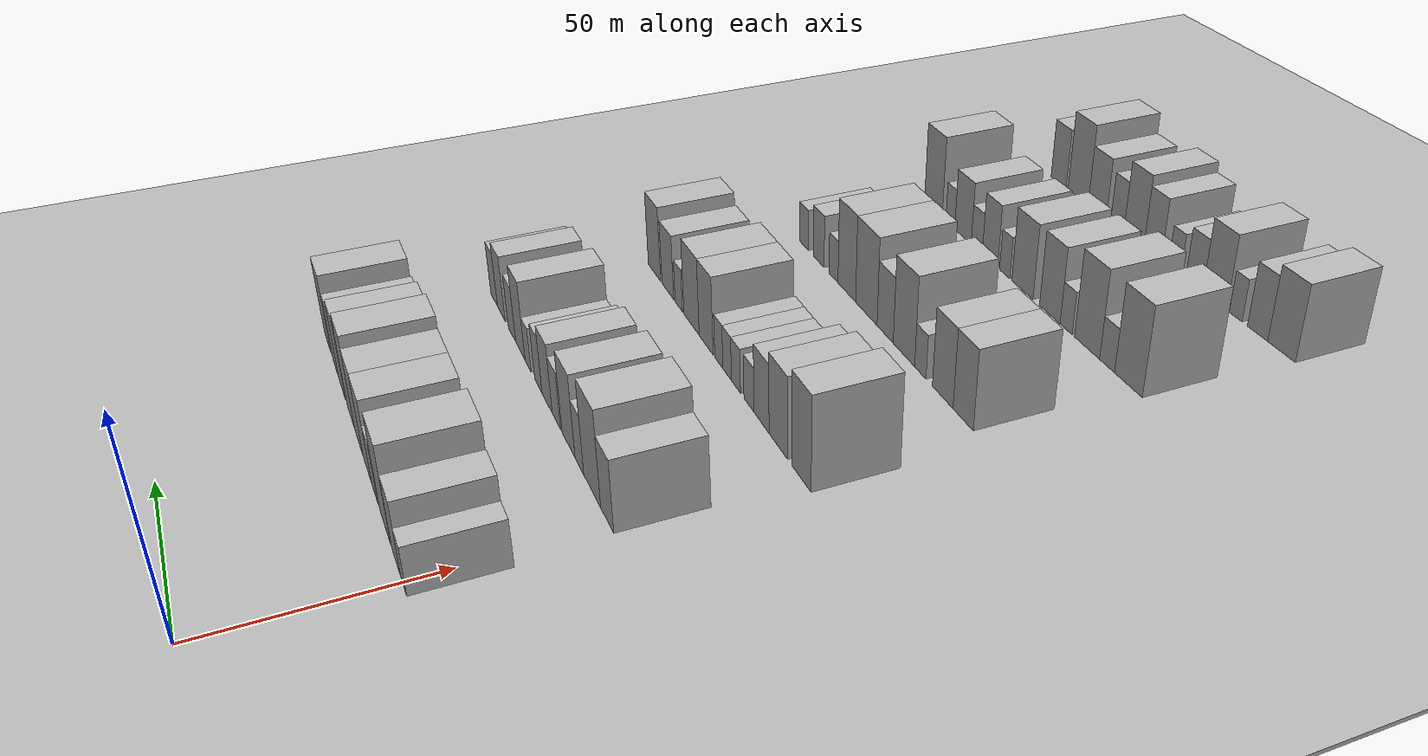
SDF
<sdf version="1.6">
 <world name="default">
  <include><name>ground_plane_1</name><uri>model://HANNAS_ground_plane</uri></include>
  <include>
   <name>ground_plane_2</name>
   <uri>model://HANNAS_ground_plane</uri>
   <pose>100 0 0  0 0 0</pose>
  </include>
  <model name="building_66">
   <static>1</static>
   <pose>50.0000 -1.7930 0 0.000000 0.000000 0.000000</pose>
   <link name="link">
    <pose>0 0 6.00 0 0 0</pose>
    <collision name="collision"><geometry><box><size>20.0000 5.8030 12.0000</size></box></geometry></collision>
    <visual name="visual">
     <cast_shadows>0</cast_shadows>
     <geometry><box><size>20.0000 5.8030 12.0000</size></box></geometry>
     <material>
      <script>
       <uri>model://HANNAS_wall/materials/scripts</uri>
       <uri>model://HANNAS_wall/materials/textures</uri>
       <name>vrc/HANNAS_wall</name>
      </script>
     </material>
    </visual>
   </link>
  </model>
  <model name="building_67">
   <static>1</static>
   <pose>50.0000 5.4243 0 0.000000 0.000000 0.000000</pose>
   <link name="link">
    <pose>0 0 9.00 0 0 0</pose>
    <collision name="collision"><geometry><box><size>20.0000 8.6317 18.0000</size></box></geometry></collision>
    <visual name="visual">
     <cast_shadows>0</cast_shadows>
     <geometry><box><size>20.0000 8.6317 18.0000</size></box></geometry>
     <material>
      <script>
       <uri>model://HANNAS_wall/materials/scripts</uri>
       <uri>model://HANNAS_wall/materials/textures</uri>
       <name>vrc/HANNAS_wall</name>
      </script>
     </material>
    </visual>
   </link>
  </model>
  <model name="building_68">
   <static>1</static>
   <pose>50.0000 16.5635 0 0.000000 0.000000 0.000000</pose>
   <link name="link">
    <pose>0 0 12.00 0 0 0</pose>
    <collision name="collision"><geometry><box><size>20.0000 11.6468 24.0000</size></box></geometry></collision>
    <visual name="visual">
     <cast_shadows>0</cast_shadows>
     <geometry><box><size>20.0000 11.6468 24.0000</size></box></geometry>
     <material>
      <script>
       <uri>model://HANNAS_wall/materials/scripts</uri>
       <uri>model://HANNAS_wall/materials/textures</uri>
       <name>vrc/HANNAS_wall</name>
      </script>
     </material>
    </visual>
   </link>
  </model>
  <model name="building_69">
   <static>1</static>
   <pose>50.0000 27.7491 0 0.000000 0.000000 0.000000</pose>
   <link name="link">
    <pose>0 0 7.50 0 0 0</pose>
    <collision name="collision"><geometry><box><size>20.0000 6.7244 15.0000</size></box></geometry></collision>
    <visual name="visual">
     <cast_shadows>0</cast_shadows>
     <geometry><box><size>20.0000 6.7244 15.0000</size></box></geometry>
     <material>
      <script>
       <uri>model://HANNAS_wall/materials/scripts</uri>
       <uri>model://HANNAS_wall/materials/textures</uri>
       <name>vrc/HANNAS_wall</name>
      </script>
     </material>
    </visual>
   </link>
  </model>
  <model name="building_70">
   <static>1</static>
   <pose>50.0000 36.2370 0 0.000000 0.000000 0.000000</pose>
   <link name="link">
    <pose>0 0 10.50 0 0 0</pose>
    <collision name="collision"><geometry><box><size>20.0000 10.2514 21.0000</size></box></geometry></collision>
    <visual name="visual">
     <cast_shadows>0</cast_shadows>
     <geometry><box><size>20.0000 10.2514 21.0000</size></box></geometry>
     <material>
      <script>
       <uri>model://HANNAS_wall/materials/scripts</uri>
       <uri>model://HANNAS_wall/materials/textures</uri>
       <name>vrc/HANNAS_wall</name>
      </script>
     </material>
    </visual>
   </link>
  </model>
  <model name="building_71">
   <static>1</static>
   <pose>50.0000 46.3768 0 0.000000 0.000000 0.000000</pose>
   <link name="link">
    <pose>0 0 10.50 0 0 0</pose>
    <collision name="collision"><geometry><box><size>20.0000 10.0281 21.0000</size></box></geometry></collision>
    <visual name="visual">
     <cast_shadows>0</cast_shadows>
     <geometry><box><size>20.0000 10.0281 21.0000</size></box></geometry>
     <material>
      <script>
       <uri>model://HANNAS_wall/materials/scripts</uri>
       <uri>model://HANNAS_wall/materials/textures</uri>
       <name>vrc/HANNAS_wall</name>
      </script>
     </material>
    </visual>
   </link>
  </model>
  <model name="building_72">
   <static>1</static>
   <pose>50.0000 56.3590 0 0.000000 0.000000 0.000000</pose>
   <link name="link">
    <pose>0 0 12.00 0 0 0</pose>
    <collision name="collision"><geometry><box><size>20.0000 9.9364 24.0000</size></box></geometry></collision>
    <visual name="visual">
     <cast_shadows>0</cast_shadows>
     <geometry><box><size>20.0000 9.9364 24.0000</size></box></geometry>
     <material>
      <script>
       <uri>model://HANNAS_wall/materials/scripts</uri>
       <uri>model://HANNAS_wall/materials/textures</uri>
       <name>vrc/HANNAS_wall</name>
      </script>
     </material>
    </visual>
   </link>
  </model>
  <model name="building_73">
   <static>1</static>
   <pose>50.0000 68.0204 0 0.000000 0.000000 0.000000</pose>
   <link name="link">
    <pose>0 0 10.50 0 0 0</pose>
    <collision name="collision"><geometry><box><size>20.0000 9.3864 21.0000</size></box></geometry></collision>
    <visual name="visual">
     <cast_shadows>0</cast_shadows>
     <geometry><box><size>20.0000 9.3864 21.0000</size></box></geometry>
     <material>
      <script>
       <uri>model://HANNAS_wall/materials/scripts</uri>
       <uri>model://HANNAS_wall/materials/textures</uri>
       <name>vrc/HANNAS_wall</name>
      </script>
     </material>
    </visual>
   </link>
  </model>
  <model name="building_74">
   <static>1</static>
   <pose>50.0000 76.7743 0 0.000000 0.000000 0.000000</pose>
   <link name="link">
    <pose>0 0 9.00 0 0 0</pose>
    <collision name="collision"><geometry><box><size>20.0000 8.1215 18.0000</size></box></geometry></collision>
    <visual name="visual">
     <cast_shadows>0</cast_shadows>
     <geometry><box><size>20.0000 8.1215 18.0000</size></box></geometry>
     <material>
      <script>
       <uri>model://HANNAS_wall/materials/scripts</uri>
       <uri>model://HANNAS_wall/materials/textures</uri>
       <name>vrc/HANNAS_wall</name>
      </script>
     </material>
    </visual>
   </link>
  </model>
  <model name="building_75">
   <static>1</static>
   <pose>50.0000 88.6236 0 0.000000 0.000000 0.000000</pose>
   <link name="link">
    <pose>0 0 10.50 0 0 0</pose>
    <collision name="collision"><geometry><box><size>20.0000 9.5769 21.0000</size></box></geometry></collision>
    <visual name="visual">
     <cast_shadows>0</cast_shadows>
     <geometry><box><size>20.0000 9.5769 21.0000</size></box></geometry>
     <material>
      <script>
       <uri>model://HANNAS_wall/materials/scripts</uri>
       <uri>model://HANNAS_wall/materials/textures</uri>
       <name>vrc/HANNAS_wall</name>
      </script>
     </material>
    </visual>
   </link>
  </model>
  <model name="building_212">
   <static>1</static>
   <pose>90.0000 1.4858 0 0.000000 0.000000 0.000000</pose>
   <link name="link">
    <pose>0 0 9.00 0 0 0</pose>
    <collision name="collision"><geometry><box><size>20.0000 8.4259 18.0000</size></box></geometry></collision>
    <visual name="visual">
     <cast_shadows>0</cast_shadows>
     <geometry><box><size>20.0000 8.4259 18.0000</size></box></geometry>
     <material>
      <script>
       <uri>model://HANNAS_wall/materials/scripts</uri>
       <uri>model://HANNAS_wall/materials/textures</uri>
       <name>vrc/HANNAS_wall</name>
      </script>
     </material>
    </visual>
   </link>
  </model>
  <model name="building_213">
   <static>1</static>
   <pose>90.0000 11.5079 0 0.000000 0.000000 0.000000</pose>
   <link name="link">
    <pose>0 0 12.00 0 0 0</pose>
    <collision name="collision"><geometry><box><size>20.0000 11.6184 24.0000</size></box></geometry></collision>
    <visual name="visual">
     <cast_shadows>0</cast_shadows>
     <geometry><box><size>20.0000 11.6184 24.0000</size></box></geometry>
     <material>
      <script>
       <uri>model://HANNAS_wall/materials/scripts</uri>
       <uri>model://HANNAS_wall/materials/textures</uri>
       <name>vrc/HANNAS_wall</name>
      </script>
     </material>
    </visual>
   </link>
  </model>
  <model name="building_214">
   <static>1</static>
   <pose>90.0000 20.4236 0 0.000000 0.000000 0.000000</pose>
   <link name="link">
    <pose>0 0 7.50 0 0 0</pose>
    <collision name="collision"><geometry><box><size>20.0000 6.2130 15.0000</size></box></geometry></collision>
    <visual name="visual">
     <cast_shadows>0</cast_shadows>
     <geometry><box><size>20.0000 6.2130 15.0000</size></box></geometry>
     <material>
      <script>
       <uri>model://HANNAS_wall/materials/scripts</uri>
       <uri>model://HANNAS_wall/materials/textures</uri>
       <name>vrc/HANNAS_wall</name>
      </script>
     </material>
    </visual>
   </link>
  </model>
  <model name="building_215">
   <static>1</static>
   <pose>90.0000 28.3639 0 0.000000 0.000000 0.000000</pose>
   <link name="link">
    <pose>0 0 10.50 0 0 0</pose>
    <collision name="collision"><geometry><box><size>20.0000 9.6675 21.0000</size></box></geometry></collision>
    <visual name="visual">
     <cast_shadows>0</cast_shadows>
     <geometry><box><size>20.0000 9.6675 21.0000</size></box></geometry>
     <material>
      <script>
       <uri>model://HANNAS_wall/materials/scripts</uri>
       <uri>model://HANNAS_wall/materials/textures</uri>
       <name>vrc/HANNAS_wall</name>
      </script>
     </material>
    </visual>
   </link>
  </model>
  <model name="building_216">
   <static>1</static>
   <pose>90.0000 37.5017 0 0.000000 0.000000 0.000000</pose>
   <link name="link">
    <pose>0 0 7.50 0 0 0</pose>
    <collision name="collision"><geometry><box><size>20.0000 6.6081 15.0000</size></box></geometry></collision>
    <visual name="visual">
     <cast_shadows>0</cast_shadows>
     <geometry><box><size>20.0000 6.6081 15.0000</size></box></geometry>
     <material>
      <script>
       <uri>model://HANNAS_wall/materials/scripts</uri>
       <uri>model://HANNAS_wall/materials/textures</uri>
       <name>vrc/HANNAS_wall</name>
      </script>
     </material>
    </visual>
   </link>
  </model>
  <model name="building_217">
   <static>1</static>
   <pose>90.0000 44.9031 0 0.000000 0.000000 0.000000</pose>
   <link name="link">
    <pose>0 0 9.00 0 0 0</pose>
    <collision name="collision"><geometry><box><size>20.0000 8.1945 18.0000</size></box></geometry></collision>
    <visual name="visual">
     <cast_shadows>0</cast_shadows>
     <geometry><box><size>20.0000 8.1945 18.0000</size></box></geometry>
     <material>
      <script>
       <uri>model://HANNAS_wall/materials/scripts</uri>
       <uri>model://HANNAS_wall/materials/textures</uri>
       <name>vrc/HANNAS_wall</name>
      </script>
     </material>
    </visual>
   </link>
  </model>
  <model name="building_218">
   <static>1</static>
   <pose>90.0000 52.0956 0 0.000000 0.000000 0.000000</pose>
   <link name="link">
    <pose>0 0 7.50 0 0 0</pose>
    <collision name="collision"><geometry><box><size>20.0000 6.1906 15.0000</size></box></geometry></collision>
    <visual name="visual">
     <cast_shadows>0</cast_shadows>
     <geometry><box><size>20.0000 6.1906 15.0000</size></box></geometry>
     <material>
      <script>
       <uri>model://HANNAS_wall/materials/scripts</uri>
       <uri>model://HANNAS_wall/materials/textures</uri>
       <name>vrc/HANNAS_wall</name>
      </script>
     </material>
    </visual>
   </link>
  </model>
  <model name="building_219">
   <static>1</static>
   <pose>90.0000 60.7990 0 0.000000 0.000000 0.000000</pose>
   <link name="link">
    <pose>0 0 6.00 0 0 0</pose>
    <collision name="collision"><geometry><box><size>20.0000 5.2161 12.0000</size></box></geometry></collision>
    <visual name="visual">
     <cast_shadows>0</cast_shadows>
     <geometry><box><size>20.0000 5.2161 12.0000</size></box></geometry>
     <material>
      <script>
       <uri>model://HANNAS_wall/materials/scripts</uri>
       <uri>model://HANNAS_wall/materials/textures</uri>
       <name>vrc/HANNAS_wall</name>
      </script>
     </material>
    </visual>
   </link>
  </model>
  <model name="building_220">
   <static>1</static>
   <pose>90.0000 67.6302 0 0.000000 0.000000 0.000000</pose>
   <link name="link">
    <pose>0 0 10.50 0 0 0</pose>
    <collision name="collision"><geometry><box><size>20.0000 8.4463 21.0000</size></box></geometry></collision>
    <visual name="visual">
     <cast_shadows>0</cast_shadows>
     <geometry><box><size>20.0000 8.4463 21.0000</size></box></geometry>
     <material>
      <script>
       <uri>model://HANNAS_wall/materials/scripts</uri>
       <uri>model://HANNAS_wall/materials/textures</uri>
       <name>vrc/HANNAS_wall</name>
      </script>
     </material>
    </visual>
   </link>
  </model>
  <model name="building_221">
   <static>1</static>
   <pose>90.0000 75.2871 0 0.000000 0.000000 0.000000</pose>
   <link name="link">
    <pose>0 0 7.50 0 0 0</pose>
    <collision name="collision"><geometry><box><size>20.0000 6.8675 15.0000</size></box></geometry></collision>
    <visual name="visual">
     <cast_shadows>0</cast_shadows>
     <geometry><box><size>20.0000 6.8675 15.0000</size></box></geometry>
     <material>
      <script>
       <uri>model://HANNAS_wall/materials/scripts</uri>
       <uri>model://HANNAS_wall/materials/textures</uri>
       <name>vrc/HANNAS_wall</name>
      </script>
     </material>
    </visual>
   </link>
  </model>
  <model name="building_222">
   <static>1</static>
   <pose>90.0000 85.5125 0 0.000000 0.000000 0.000000</pose>
   <link name="link">
    <pose>0 0 9.00 0 0 0</pose>
    <collision name="collision"><geometry><box><size>20.0000 7.5833 18.0000</size></box></geometry></collision>
    <visual name="visual">
     <cast_shadows>0</cast_shadows>
     <geometry><box><size>20.0000 7.5833 18.0000</size></box></geometry>
     <material>
      <script>
       <uri>model://HANNAS_wall/materials/scripts</uri>
       <uri>model://HANNAS_wall/materials/textures</uri>
       <name>vrc/HANNAS_wall</name>
      </script>
     </material>
    </visual>
   </link>
  </model>
  <model name="building_223">
   <static>1</static>
   <pose>90.0000 92.5533 0 0.000000 0.000000 0.000000</pose>
   <link name="link">
    <pose>0 0 7.50 0 0 0</pose>
    <collision name="collision"><geometry><box><size>20.0000 6.4982 15.0000</size></box></geometry></collision>
    <visual name="visual">
     <cast_shadows>0</cast_shadows>
     <geometry><box><size>20.0000 6.4982 15.0000</size></box></geometry>
     <material>
      <script>
       <uri>model://HANNAS_wall/materials/scripts</uri>
       <uri>model://HANNAS_wall/materials/textures</uri>
       <name>vrc/HANNAS_wall</name>
      </script>
     </material>
    </visual>
   </link>
  </model>
  <model name="building_349">
   <static>1</static>
   <pose>130.0000 -1.3618 0 0.000000 0.000000 0.000000</pose>
   <link name="link">
    <pose>0 0 12.00 0 0 0</pose>
    <collision name="collision"><geometry><box><size>20.0000 9.8108 24.0000</size></box></geometry></collision>
    <visual name="visual">
     <cast_shadows>0</cast_shadows>
     <geometry><box><size>20.0000 9.8108 24.0000</size></box></geometry>
     <material>
      <script>
       <uri>model://HANNAS_wall/materials/scripts</uri>
       <uri>model://HANNAS_wall/materials/textures</uri>
       <name>vrc/HANNAS_wall</name>
      </script>
     </material>
    </visual>
   </link>
  </model>
  <model name="building_350">
   <static>1</static>
   <pose>130.0000 10.4962 0 0.000000 0.000000 0.000000</pose>
   <link name="link">
    <pose>0 0 10.50 0 0 0</pose>
    <collision name="collision"><geometry><box><size>20.0000 9.9052 21.0000</size></box></geometry></collision>
    <visual name="visual">
     <cast_shadows>0</cast_shadows>
     <geometry><box><size>20.0000 9.9052 21.0000</size></box></geometry>
     <material>
      <script>
       <uri>model://HANNAS_wall/materials/scripts</uri>
       <uri>model://HANNAS_wall/materials/textures</uri>
       <name>vrc/HANNAS_wall</name>
      </script>
     </material>
    </visual>
   </link>
  </model>
  <model name="building_351">
   <static>1</static>
   <pose>130.0000 19.6137 0 0.000000 0.000000 0.000000</pose>
   <link name="link">
    <pose>0 0 9.00 0 0 0</pose>
    <collision name="collision"><geometry><box><size>20.0000 8.3298 18.0000</size></box></geometry></collision>
    <visual name="visual">
     <cast_shadows>0</cast_shadows>
     <geometry><box><size>20.0000 8.3298 18.0000</size></box></geometry>
     <material>
      <script>
       <uri>model://HANNAS_wall/materials/scripts</uri>
       <uri>model://HANNAS_wall/materials/textures</uri>
       <name>vrc/HANNAS_wall</name>
      </script>
     </material>
    </visual>
   </link>
  </model>
  <model name="building_352">
   <static>1</static>
   <pose>130.0000 26.7574 0 0.000000 0.000000 0.000000</pose>
   <link name="link">
    <pose>0 0 6.00 0 0 0</pose>
    <collision name="collision"><geometry><box><size>20.0000 5.9576 12.0000</size></box></geometry></collision>
    <visual name="visual">
     <cast_shadows>0</cast_shadows>
     <geometry><box><size>20.0000 5.9576 12.0000</size></box></geometry>
     <material>
      <script>
       <uri>model://HANNAS_wall/materials/scripts</uri>
       <uri>model://HANNAS_wall/materials/textures</uri>
       <name>vrc/HANNAS_wall</name>
      </script>
     </material>
    </visual>
   </link>
  </model>
  <model name="building_353">
   <static>1</static>
   <pose>130.0000 34.4335 0 0.000000 0.000000 0.000000</pose>
   <link name="link">
    <pose>0 0 6.00 0 0 0</pose>
    <collision name="collision"><geometry><box><size>20.0000 5.3947 12.0000</size></box></geometry></collision>
    <visual name="visual">
     <cast_shadows>0</cast_shadows>
     <geometry><box><size>20.0000 5.3947 12.0000</size></box></geometry>
     <material>
      <script>
       <uri>model://HANNAS_wall/materials/scripts</uri>
       <uri>model://HANNAS_wall/materials/textures</uri>
       <name>vrc/HANNAS_wall</name>
      </script>
     </material>
    </visual>
   </link>
  </model>
  <model name="building_354">
   <static>1</static>
   <pose>130.0000 39.7799 0 0.000000 0.000000 0.000000</pose>
   <link name="link">
    <pose>0 0 6.00 0 0 0</pose>
    <collision name="collision"><geometry><box><size>20.0000 5.2982 12.0000</size></box></geometry></collision>
    <visual name="visual">
     <cast_shadows>0</cast_shadows>
     <geometry><box><size>20.0000 5.2982 12.0000</size></box></geometry>
     <material>
      <script>
       <uri>model://HANNAS_wall/materials/scripts</uri>
       <uri>model://HANNAS_wall/materials/textures</uri>
       <name>vrc/HANNAS_wall</name>
      </script>
     </material>
    </visual>
   </link>
  </model>
  <model name="building_355">
   <static>1</static>
   <pose>130.0000 44.9977 0 0.000000 0.000000 0.000000</pose>
   <link name="link">
    <pose>0 0 6.00 0 0 0</pose>
    <collision name="collision"><geometry><box><size>20.0000 5.1373 12.0000</size></box></geometry></collision>
    <visual name="visual">
     <cast_shadows>0</cast_shadows>
     <geometry><box><size>20.0000 5.1373 12.0000</size></box></geometry>
     <material>
      <script>
       <uri>model://HANNAS_wall/materials/scripts</uri>
       <uri>model://HANNAS_wall/materials/textures</uri>
       <name>vrc/HANNAS_wall</name>
      </script>
     </material>
    </visual>
   </link>
  </model>
  <model name="building_356">
   <static>1</static>
   <pose>130.0000 53.1386 0 0.000000 0.000000 0.000000</pose>
   <link name="link">
    <pose>0 0 10.50 0 0 0</pose>
    <collision name="collision"><geometry><box><size>20.0000 9.1446 21.0000</size></box></geometry></collision>
    <visual name="visual">
     <cast_shadows>0</cast_shadows>
     <geometry><box><size>20.0000 9.1446 21.0000</size></box></geometry>
     <material>
      <script>
       <uri>model://HANNAS_wall/materials/scripts</uri>
       <uri>model://HANNAS_wall/materials/textures</uri>
       <name>vrc/HANNAS_wall</name>
      </script>
     </material>
    </visual>
   </link>
  </model>
  <model name="building_357">
   <static>1</static>
   <pose>130.0000 62.9535 0 0.000000 0.000000 0.000000</pose>
   <link name="link">
    <pose>0 0 10.50 0 0 0</pose>
    <collision name="collision"><geometry><box><size>20.0000 10.4851 21.0000</size></box></geometry></collision>
    <visual name="visual">
     <cast_shadows>0</cast_shadows>
     <geometry><box><size>20.0000 10.4851 21.0000</size></box></geometry>
     <material>
      <script>
       <uri>model://HANNAS_wall/materials/scripts</uri>
       <uri>model://HANNAS_wall/materials/textures</uri>
       <name>vrc/HANNAS_wall</name>
      </script>
     </material>
    </visual>
   </link>
  </model>
  <model name="building_358">
   <static>1</static>
   <pose>130.0000 71.8069 0 0.000000 0.000000 0.000000</pose>
   <link name="link">
    <pose>0 0 6.00 0 0 0</pose>
    <collision name="collision"><geometry><box><size>20.0000 5.2217 12.0000</size></box></geometry></collision>
    <visual name="visual">
     <cast_shadows>0</cast_shadows>
     <geometry><box><size>20.0000 5.2217 12.0000</size></box></geometry>
     <material>
      <script>
       <uri>model://HANNAS_wall/materials/scripts</uri>
       <uri>model://HANNAS_wall/materials/textures</uri>
       <name>vrc/HANNAS_wall</name>
      </script>
     </material>
    </visual>
   </link>
  </model>
  <model name="building_359">
   <static>1</static>
   <pose>130.0000 79.7259 0 0.000000 0.000000 0.000000</pose>
   <link name="link">
    <pose>0 0 9.00 0 0 0</pose>
    <collision name="collision"><geometry><box><size>20.0000 8.6163 18.0000</size></box></geometry></collision>
    <visual name="visual">
     <cast_shadows>0</cast_shadows>
     <geometry><box><size>20.0000 8.6163 18.0000</size></box></geometry>
     <material>
      <script>
       <uri>model://HANNAS_wall/materials/scripts</uri>
       <uri>model://HANNAS_wall/materials/textures</uri>
       <name>vrc/HANNAS_wall</name>
      </script>
     </material>
    </visual>
   </link>
  </model>
  <model name="building_360">
   <static>1</static>
   <pose>130.0000 89.7371 0 0.000000 0.000000 0.000000</pose>
   <link name="link">
    <pose>0 0 10.50 0 0 0</pose>
    <collision name="collision"><geometry><box><size>20.0000 9.4061 21.0000</size></box></geometry></collision>
    <visual name="visual">
     <cast_shadows>0</cast_shadows>
     <geometry><box><size>20.0000 9.4061 21.0000</size></box></geometry>
     <material>
      <script>
       <uri>model://HANNAS_wall/materials/scripts</uri>
       <uri>model://HANNAS_wall/materials/textures</uri>
       <name>vrc/HANNAS_wall</name>
      </script>
     </material>
    </visual>
   </link>
  </model>
  <model name="building_483">
   <static>1</static>
   <pose>170.0000 3.5736 0 0.000000 0.000000 0.000000</pose>
   <link name="link">
    <pose>0 0 10.50 0 0 0</pose>
    <collision name="collision"><geometry><box><size>20.0000 8.9109 21.0000</size></box></geometry></collision>
    <visual name="visual">
     <cast_shadows>0</cast_shadows>
     <geometry><box><size>20.0000 8.9109 21.0000</size></box></geometry>
     <material>
      <script>
       <uri>model://HANNAS_wall/materials/scripts</uri>
       <uri>model://HANNAS_wall/materials/textures</uri>
       <name>vrc/HANNAS_wall</name>
      </script>
     </material>
    </visual>
   </link>
  </model>
  <model name="building_484">
   <static>1</static>
   <pose>170.0000 12.7594 0 0.000000 0.000000 0.000000</pose>
   <link name="link">
    <pose>0 0 10.50 0 0 0</pose>
    <collision name="collision"><geometry><box><size>20.0000 9.4607 21.0000</size></box></geometry></collision>
    <visual name="visual">
     <cast_shadows>0</cast_shadows>
     <geometry><box><size>20.0000 9.4607 21.0000</size></box></geometry>
     <material>
      <script>
       <uri>model://HANNAS_wall/materials/scripts</uri>
       <uri>model://HANNAS_wall/materials/textures</uri>
       <name>vrc/HANNAS_wall</name>
      </script>
     </material>
    </visual>
   </link>
  </model>
  <model name="building_485">
   <static>1</static>
   <pose>170.0000 23.2291 0 0.000000 0.000000 0.000000</pose>
   <link name="link">
    <pose>0 0 6.00 0 0 0</pose>
    <collision name="collision"><geometry><box><size>20.0000 5.4788 12.0000</size></box></geometry></collision>
    <visual name="visual">
     <cast_shadows>0</cast_shadows>
     <geometry><box><size>20.0000 5.4788 12.0000</size></box></geometry>
     <material>
      <script>
       <uri>model://HANNAS_wall/materials/scripts</uri>
       <uri>model://HANNAS_wall/materials/textures</uri>
       <name>vrc/HANNAS_wall</name>
      </script>
     </material>
    </visual>
   </link>
  </model>
  <model name="building_486">
   <static>1</static>
   <pose>170.0000 31.3335 0 0.000000 0.000000 0.000000</pose>
   <link name="link">
    <pose>0 0 12.00 0 0 0</pose>
    <collision name="collision"><geometry><box><size>20.0000 10.7299 24.0000</size></box></geometry></collision>
    <visual name="visual">
     <cast_shadows>0</cast_shadows>
     <geometry><box><size>20.0000 10.7299 24.0000</size></box></geometry>
     <material>
      <script>
       <uri>model://HANNAS_wall/materials/scripts</uri>
       <uri>model://HANNAS_wall/materials/textures</uri>
       <name>vrc/HANNAS_wall</name>
      </script>
     </material>
    </visual>
   </link>
  </model>
  <model name="building_487">
   <static>1</static>
   <pose>170.0000 40.9161 0 0.000000 0.000000 0.000000</pose>
   <link name="link">
    <pose>0 0 9.00 0 0 0</pose>
    <collision name="collision"><geometry><box><size>20.0000 8.4354 18.0000</size></box></geometry></collision>
    <visual name="visual">
     <cast_shadows>0</cast_shadows>
     <geometry><box><size>20.0000 8.4354 18.0000</size></box></geometry>
     <material>
      <script>
       <uri>model://HANNAS_wall/materials/scripts</uri>
       <uri>model://HANNAS_wall/materials/textures</uri>
       <name>vrc/HANNAS_wall</name>
      </script>
     </material>
    </visual>
   </link>
  </model>
  <model name="building_488">
   <static>1</static>
   <pose>170.0000 51.0094 0 0.000000 0.000000 0.000000</pose>
   <link name="link">
    <pose>0 0 12.00 0 0 0</pose>
    <collision name="collision"><geometry><box><size>20.0000 11.7512 24.0000</size></box></geometry></collision>
    <visual name="visual">
     <cast_shadows>0</cast_shadows>
     <geometry><box><size>20.0000 11.7512 24.0000</size></box></geometry>
     <material>
      <script>
       <uri>model://HANNAS_wall/materials/scripts</uri>
       <uri>model://HANNAS_wall/materials/textures</uri>
       <name>vrc/HANNAS_wall</name>
      </script>
     </material>
    </visual>
   </link>
  </model>
  <model name="building_489">
   <static>1</static>
   <pose>170.0000 61.9286 0 0.000000 0.000000 0.000000</pose>
   <link name="link">
    <pose>0 0 12.00 0 0 0</pose>
    <collision name="collision"><geometry><box><size>20.0000 10.0871 24.0000</size></box></geometry></collision>
    <visual name="visual">
     <cast_shadows>0</cast_shadows>
     <geometry><box><size>20.0000 10.0871 24.0000</size></box></geometry>
     <material>
      <script>
       <uri>model://HANNAS_wall/materials/scripts</uri>
       <uri>model://HANNAS_wall/materials/textures</uri>
       <name>vrc/HANNAS_wall</name>
      </script>
     </material>
    </visual>
   </link>
  </model>
  <model name="building_490">
   <static>1</static>
   <pose>170.0000 69.6183 0 0.000000 0.000000 0.000000</pose>
   <link name="link">
    <pose>0 0 6.00 0 0 0</pose>
    <collision name="collision"><geometry><box><size>20.0000 5.2923 12.0000</size></box></geometry></collision>
    <visual name="visual">
     <cast_shadows>0</cast_shadows>
     <geometry><box><size>20.0000 5.2923 12.0000</size></box></geometry>
     <material>
      <script>
       <uri>model://HANNAS_wall/materials/scripts</uri>
       <uri>model://HANNAS_wall/materials/textures</uri>
       <name>vrc/HANNAS_wall</name>
      </script>
     </material>
    </visual>
   </link>
  </model>
  <model name="building_491">
   <static>1</static>
   <pose>170.0000 78.5814 0 0.000000 0.000000 0.000000</pose>
   <link name="link">
    <pose>0 0 7.50 0 0 0</pose>
    <collision name="collision"><geometry><box><size>20.0000 6.6339 15.0000</size></box></geometry></collision>
    <visual name="visual">
     <cast_shadows>0</cast_shadows>
     <geometry><box><size>20.0000 6.6339 15.0000</size></box></geometry>
     <material>
      <script>
       <uri>model://HANNAS_wall/materials/scripts</uri>
       <uri>model://HANNAS_wall/materials/textures</uri>
       <name>vrc/HANNAS_wall</name>
      </script>
     </material>
    </visual>
   </link>
  </model>
  <model name="building_492">
   <static>1</static>
   <pose>170.0000 87.6372 0 0.000000 0.000000 0.000000</pose>
   <link name="link">
    <pose>0 0 6.00 0 0 0</pose>
    <collision name="collision"><geometry><box><size>20.0000 5.4776 12.0000</size></box></geometry></collision>
    <visual name="visual">
     <cast_shadows>0</cast_shadows>
     <geometry><box><size>20.0000 5.4776 12.0000</size></box></geometry>
     <material>
      <script>
       <uri>model://HANNAS_wall/materials/scripts</uri>
       <uri>model://HANNAS_wall/materials/textures</uri>
       <name>vrc/HANNAS_wall</name>
      </script>
     </material>
    </visual>
   </link>
  </model>
  <model name="building_618">
   <static>1</static>
   <pose>210.0000 0.6025 0 0.000000 0.000000 0.000000</pose>
   <link name="link">
    <pose>0 0 12.00 0 0 0</pose>
    <collision name="collision"><geometry><box><size>20.0000 10.7509 24.0000</size></box></geometry></collision>
    <visual name="visual">
     <cast_shadows>0</cast_shadows>
     <geometry><box><size>20.0000 10.7509 24.0000</size></box></geometry>
     <material>
      <script>
       <uri>model://HANNAS_wall/materials/scripts</uri>
       <uri>model://HANNAS_wall/materials/textures</uri>
       <name>vrc/HANNAS_wall</name>
      </script>
     </material>
    </visual>
   </link>
  </model>
  <model name="building_619">
   <static>1</static>
   <pose>210.0000 8.9688 0 0.000000 0.000000 0.000000</pose>
   <link name="link">
    <pose>0 0 6.00 0 0 0</pose>
    <collision name="collision"><geometry><box><size>20.0000 5.9815 12.0000</size></box></geometry></collision>
    <visual name="visual">
     <cast_shadows>0</cast_shadows>
     <geometry><box><size>20.0000 5.9815 12.0000</size></box></geometry>
     <material>
      <script>
       <uri>model://HANNAS_wall/materials/scripts</uri>
       <uri>model://HANNAS_wall/materials/textures</uri>
       <name>vrc/HANNAS_wall</name>
      </script>
     </material>
    </visual>
   </link>
  </model>
  <model name="building_620">
   <static>1</static>
   <pose>210.0000 17.1660 0 0.000000 0.000000 0.000000</pose>
   <link name="link">
    <pose>0 0 12.00 0 0 0</pose>
    <collision name="collision"><geometry><box><size>20.0000 10.4130 24.0000</size></box></geometry></collision>
    <visual name="visual">
     <cast_shadows>0</cast_shadows>
     <geometry><box><size>20.0000 10.4130 24.0000</size></box></geometry>
     <material>
      <script>
       <uri>model://HANNAS_wall/materials/scripts</uri>
       <uri>model://HANNAS_wall/materials/textures</uri>
       <name>vrc/HANNAS_wall</name>
      </script>
     </material>
    </visual>
   </link>
  </model>
  <model name="building_621">
   <static>1</static>
   <pose>210.0000 26.0051 0 0.000000 0.000000 0.000000</pose>
   <link name="link">
    <pose>0 0 6.00 0 0 0</pose>
    <collision name="collision"><geometry><box><size>20.0000 5.2653 12.0000</size></box></geometry></collision>
    <visual name="visual">
     <cast_shadows>0</cast_shadows>
     <geometry><box><size>20.0000 5.2653 12.0000</size></box></geometry>
     <material>
      <script>
       <uri>model://HANNAS_wall/materials/scripts</uri>
       <uri>model://HANNAS_wall/materials/textures</uri>
       <name>vrc/HANNAS_wall</name>
      </script>
     </material>
    </visual>
   </link>
  </model>
  <model name="building_622">
   <static>1</static>
   <pose>210.0000 33.2174 0 0.000000 0.000000 0.000000</pose>
   <link name="link">
    <pose>0 0 10.50 0 0 0</pose>
    <collision name="collision"><geometry><box><size>20.0000 9.1593 21.0000</size></box></geometry></collision>
    <visual name="visual">
     <cast_shadows>0</cast_shadows>
     <geometry><box><size>20.0000 9.1593 21.0000</size></box></geometry>
     <material>
      <script>
       <uri>model://HANNAS_wall/materials/scripts</uri>
       <uri>model://HANNAS_wall/materials/textures</uri>
       <name>vrc/HANNAS_wall</name>
      </script>
     </material>
    </visual>
   </link>
  </model>
  <model name="building_623">
   <static>1</static>
   <pose>210.0000 45.7972 0 0.000000 0.000000 0.000000</pose>
   <link name="link">
    <pose>0 0 10.50 0 0 0</pose>
    <collision name="collision"><geometry><box><size>20.0000 10.0003 21.0000</size></box></geometry></collision>
    <visual name="visual">
     <cast_shadows>0</cast_shadows>
     <geometry><box><size>20.0000 10.0003 21.0000</size></box></geometry>
     <material>
      <script>
       <uri>model://HANNAS_wall/materials/scripts</uri>
       <uri>model://HANNAS_wall/materials/textures</uri>
       <name>vrc/HANNAS_wall</name>
      </script>
     </material>
    </visual>
   </link>
  </model>
  <model name="building_624">
   <static>1</static>
   <pose>210.0000 54.2942 0 0.000000 0.000000 0.000000</pose>
   <link name="link">
    <pose>0 0 6.00 0 0 0</pose>
    <collision name="collision"><geometry><box><size>20.0000 4.9937 12.0000</size></box></geometry></collision>
    <visual name="visual">
     <cast_shadows>0</cast_shadows>
     <geometry><box><size>20.0000 4.9937 12.0000</size></box></geometry>
     <material>
      <script>
       <uri>model://HANNAS_wall/materials/scripts</uri>
       <uri>model://HANNAS_wall/materials/textures</uri>
       <name>vrc/HANNAS_wall</name>
      </script>
     </material>
    </visual>
   </link>
  </model>
  <model name="building_625">
   <static>1</static>
   <pose>210.0000 61.6607 0 0.000000 0.000000 0.000000</pose>
   <link name="link">
    <pose>0 0 9.00 0 0 0</pose>
    <collision name="collision"><geometry><box><size>20.0000 7.7394 18.0000</size></box></geometry></collision>
    <visual name="visual">
     <cast_shadows>0</cast_shadows>
     <geometry><box><size>20.0000 7.7394 18.0000</size></box></geometry>
     <material>
      <script>
       <uri>model://HANNAS_wall/materials/scripts</uri>
       <uri>model://HANNAS_wall/materials/textures</uri>
       <name>vrc/HANNAS_wall</name>
      </script>
     </material>
    </visual>
   </link>
  </model>
  <model name="building_626">
   <static>1</static>
   <pose>210.0000 68.4193 0 0.000000 0.000000 0.000000</pose>
   <link name="link">
    <pose>0 0 6.00 0 0 0</pose>
    <collision name="collision"><geometry><box><size>20.0000 5.7778 12.0000</size></box></geometry></collision>
    <visual name="visual">
     <cast_shadows>0</cast_shadows>
     <geometry><box><size>20.0000 5.7778 12.0000</size></box></geometry>
     <material>
      <script>
       <uri>model://HANNAS_wall/materials/scripts</uri>
       <uri>model://HANNAS_wall/materials/textures</uri>
       <name>vrc/HANNAS_wall</name>
      </script>
     </material>
    </visual>
   </link>
  </model>
  <model name="building_627">
   <static>1</static>
   <pose>210.0000 75.6969 0 0.000000 0.000000 0.000000</pose>
   <link name="link">
    <pose>0 0 9.00 0 0 0</pose>
    <collision name="collision"><geometry><box><size>20.0000 8.7774 18.0000</size></box></geometry></collision>
    <visual name="visual">
     <cast_shadows>0</cast_shadows>
     <geometry><box><size>20.0000 8.7774 18.0000</size></box></geometry>
     <material>
      <script>
       <uri>model://HANNAS_wall/materials/scripts</uri>
       <uri>model://HANNAS_wall/materials/textures</uri>
       <name>vrc/HANNAS_wall</name>
      </script>
     </material>
    </visual>
   </link>
  </model>
  <model name="building_628">
   <static>1</static>
   <pose>210.0000 82.5438 0 0.000000 0.000000 0.000000</pose>
   <link name="link">
    <pose>0 0 6.00 0 0 0</pose>
    <collision name="collision"><geometry><box><size>20.0000 4.9164 12.0000</size></box></geometry></collision>
    <visual name="visual">
     <cast_shadows>0</cast_shadows>
     <geometry><box><size>20.0000 4.9164 12.0000</size></box></geometry>
     <material>
      <script>
       <uri>model://HANNAS_wall/materials/scripts</uri>
       <uri>model://HANNAS_wall/materials/textures</uri>
       <name>vrc/HANNAS_wall</name>
      </script>
     </material>
    </visual>
   </link>
  </model>
  <model name="building_629">
   <static>1</static>
   <pose>210.0000 92.0260 0 0.000000 0.000000 0.000000</pose>
   <link name="link">
    <pose>0 0 12.00 0 0 0</pose>
    <collision name="collision"><geometry><box><size>20.0000 10.0479 24.0000</size></box></geometry></collision>
    <visual name="visual">
     <cast_shadows>0</cast_shadows>
     <geometry><box><size>20.0000 10.0479 24.0000</size></box></geometry>
     <material>
      <script>
       <uri>model://HANNAS_wall/materials/scripts</uri>
       <uri>model://HANNAS_wall/materials/textures</uri>
       <name>vrc/HANNAS_wall</name>
      </script>
     </material>
    </visual>
   </link>
  </model>
  <model name="building_754">
   <static>1</static>
   <pose>250.0000 -2.0002 0 0.000000 0.000000 0.000000</pose>
   <link name="link">
    <pose>0 0 10.50 0 0 0</pose>
    <collision name="collision"><geometry><box><size>20.0000 9.7098 21.0000</size></box></geometry></collision>
    <visual name="visual">
     <cast_shadows>0</cast_shadows>
     <geometry><box><size>20.0000 9.7098 21.0000</size></box></geometry>
     <material>
      <script>
       <uri>model://HANNAS_wall/materials/scripts</uri>
       <uri>model://HANNAS_wall/materials/textures</uri>
       <name>vrc/HANNAS_wall</name>
      </script>
     </material>
    </visual>
   </link>
  </model>
  <model name="building_755">
   <static>1</static>
   <pose>250.0000 6.5306 0 0.000000 0.000000 0.000000</pose>
   <link name="link">
    <pose>0 0 9.00 0 0 0</pose>
    <collision name="collision"><geometry><box><size>20.0000 7.3517 18.0000</size></box></geometry></collision>
    <visual name="visual">
     <cast_shadows>0</cast_shadows>
     <geometry><box><size>20.0000 7.3517 18.0000</size></box></geometry>
     <material>
      <script>
       <uri>model://HANNAS_wall/materials/scripts</uri>
       <uri>model://HANNAS_wall/materials/textures</uri>
       <name>vrc/HANNAS_wall</name>
      </script>
     </material>
    </visual>
   </link>
  </model>
  <model name="building_756">
   <static>1</static>
   <pose>250.0000 14.6141 0 0.000000 0.000000 0.000000</pose>
   <link name="link">
    <pose>0 0 6.00 0 0 0</pose>
    <collision name="collision"><geometry><box><size>20.0000 4.8154 12.0000</size></box></geometry></collision>
    <visual name="visual">
     <cast_shadows>0</cast_shadows>
     <geometry><box><size>20.0000 4.8154 12.0000</size></box></geometry>
     <material>
      <script>
       <uri>model://HANNAS_wall/materials/scripts</uri>
       <uri>model://HANNAS_wall/materials/textures</uri>
       <name>vrc/HANNAS_wall</name>
      </script>
     </material>
    </visual>
   </link>
  </model>
  <model name="building_757">
   <static>1</static>
   <pose>250.0000 22.7258 0 0.000000 0.000000 0.000000</pose>
   <link name="link">
    <pose>0 0 10.50 0 0 0</pose>
    <collision name="collision"><geometry><box><size>20.0000 9.4081 21.0000</size></box></geometry></collision>
    <visual name="visual">
     <cast_shadows>0</cast_shadows>
     <geometry><box><size>20.0000 9.4081 21.0000</size></box></geometry>
     <material>
      <script>
       <uri>model://HANNAS_wall/materials/scripts</uri>
       <uri>model://HANNAS_wall/materials/textures</uri>
       <name>vrc/HANNAS_wall</name>
      </script>
     </material>
    </visual>
   </link>
  </model>
  <model name="building_758">
   <static>1</static>
   <pose>250.0000 30.8899 0 0.000000 0.000000 0.000000</pose>
   <link name="link">
    <pose>0 0 7.50 0 0 0</pose>
    <collision name="collision"><geometry><box><size>20.0000 6.9202 15.0000</size></box></geometry></collision>
    <visual name="visual">
     <cast_shadows>0</cast_shadows>
     <geometry><box><size>20.0000 6.9202 15.0000</size></box></geometry>
     <material>
      <script>
       <uri>model://HANNAS_wall/materials/scripts</uri>
       <uri>model://HANNAS_wall/materials/textures</uri>
       <name>vrc/HANNAS_wall</name>
      </script>
     </material>
    </visual>
   </link>
  </model>
  <model name="building_759">
   <static>1</static>
   <pose>250.0000 38.9271 0 0.000000 0.000000 0.000000</pose>
   <link name="link">
    <pose>0 0 6.00 0 0 0</pose>
    <collision name="collision"><geometry><box><size>20.0000 5.1541 12.0000</size></box></geometry></collision>
    <visual name="visual">
     <cast_shadows>0</cast_shadows>
     <geometry><box><size>20.0000 5.1541 12.0000</size></box></geometry>
     <material>
      <script>
       <uri>model://HANNAS_wall/materials/scripts</uri>
       <uri>model://HANNAS_wall/materials/textures</uri>
       <name>vrc/HANNAS_wall</name>
      </script>
     </material>
    </visual>
   </link>
  </model>
  <model name="building_760">
   <static>1</static>
   <pose>250.0000 48.3249 0 0.000000 0.000000 0.000000</pose>
   <link name="link">
    <pose>0 0 9.00 0 0 0</pose>
    <collision name="collision"><geometry><box><size>20.0000 7.6416 18.0000</size></box></geometry></collision>
    <visual name="visual">
     <cast_shadows>0</cast_shadows>
     <geometry><box><size>20.0000 7.6416 18.0000</size></box></geometry>
     <material>
      <script>
       <uri>model://HANNAS_wall/materials/scripts</uri>
       <uri>model://HANNAS_wall/materials/textures</uri>
       <name>vrc/HANNAS_wall</name>
      </script>
     </material>
    </visual>
   </link>
  </model>
  <model name="building_761">
   <static>1</static>
   <pose>250.0000 56.6692 0 0.000000 0.000000 0.000000</pose>
   <link name="link">
    <pose>0 0 10.50 0 0 0</pose>
    <collision name="collision"><geometry><box><size>20.0000 9.0470 21.0000</size></box></geometry></collision>
    <visual name="visual">
     <cast_shadows>0</cast_shadows>
     <geometry><box><size>20.0000 9.0470 21.0000</size></box></geometry>
     <material>
      <script>
       <uri>model://HANNAS_wall/materials/scripts</uri>
       <uri>model://HANNAS_wall/materials/textures</uri>
       <name>vrc/HANNAS_wall</name>
      </script>
     </material>
    </visual>
   </link>
  </model>
  <model name="building_762">
   <static>1</static>
   <pose>250.0000 64.2349 0 0.000000 0.000000 0.000000</pose>
   <link name="link">
    <pose>0 0 7.50 0 0 0</pose>
    <collision name="collision"><geometry><box><size>20.0000 6.0845 15.0000</size></box></geometry></collision>
    <visual name="visual">
     <cast_shadows>0</cast_shadows>
     <geometry><box><size>20.0000 6.0845 15.0000</size></box></geometry>
     <material>
      <script>
       <uri>model://HANNAS_wall/materials/scripts</uri>
       <uri>model://HANNAS_wall/materials/textures</uri>
       <name>vrc/HANNAS_wall</name>
      </script>
     </material>
    </visual>
   </link>
  </model>
  <model name="building_763">
   <static>1</static>
   <pose>250.0000 73.6598 0 0.000000 0.000000 0.000000</pose>
   <link name="link">
    <pose>0 0 9.00 0 0 0</pose>
    <collision name="collision"><geometry><box><size>20.0000 8.7653 18.0000</size></box></geometry></collision>
    <visual name="visual">
     <cast_shadows>0</cast_shadows>
     <geometry><box><size>20.0000 8.7653 18.0000</size></box></geometry>
     <material>
      <script>
       <uri>model://HANNAS_wall/materials/scripts</uri>
       <uri>model://HANNAS_wall/materials/textures</uri>
       <name>vrc/HANNAS_wall</name>
      </script>
     </material>
    </visual>
   </link>
  </model>
  <model name="building_764">
   <static>1</static>
   <pose>250.0000 83.0434 0 0.000000 0.000000 0.000000</pose>
   <link name="link">
    <pose>0 0 12.00 0 0 0</pose>
    <collision name="collision"><geometry><box><size>20.0000 10.0020 24.0000</size></box></geometry></collision>
    <visual name="visual">
     <cast_shadows>0</cast_shadows>
     <geometry><box><size>20.0000 10.0020 24.0000</size></box></geometry>
     <material>
      <script>
       <uri>model://HANNAS_wall/materials/scripts</uri>
       <uri>model://HANNAS_wall/materials/textures</uri>
       <name>vrc/HANNAS_wall</name>
      </script>
     </material>
    </visual>
   </link>
  </model>
  <model name="building_765">
   <static>1</static>
   <pose>250.0000 92.9272 0 0.000000 0.000000 0.000000</pose>
   <link name="link">
    <pose>0 0 9.00 0 0 0</pose>
    <collision name="collision"><geometry><box><size>20.0000 7.7656 18.0000</size></box></geometry></collision>
    <visual name="visual">
     <cast_shadows>0</cast_shadows>
     <geometry><box><size>20.0000 7.7656 18.0000</size></box></geometry>
     <material>
      <script>
       <uri>model://HANNAS_wall/materials/scripts</uri>
       <uri>model://HANNAS_wall/materials/textures</uri>
       <name>vrc/HANNAS_wall</name>
      </script>
     </material>
    </visual>
   </link>
  </model>
 </world>
</sdf>
